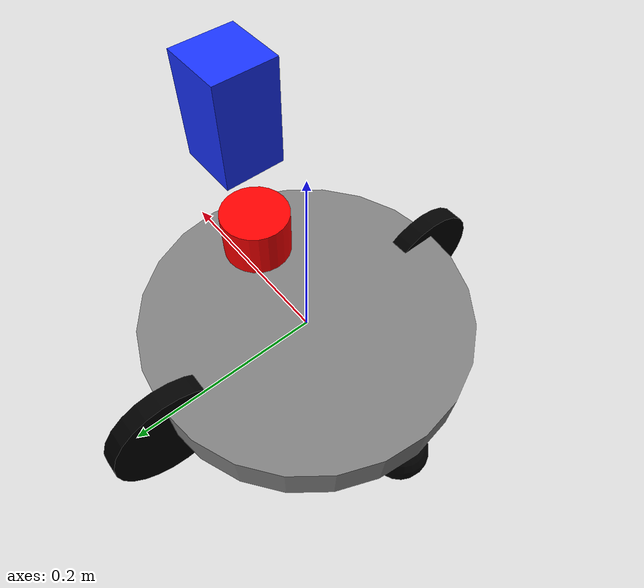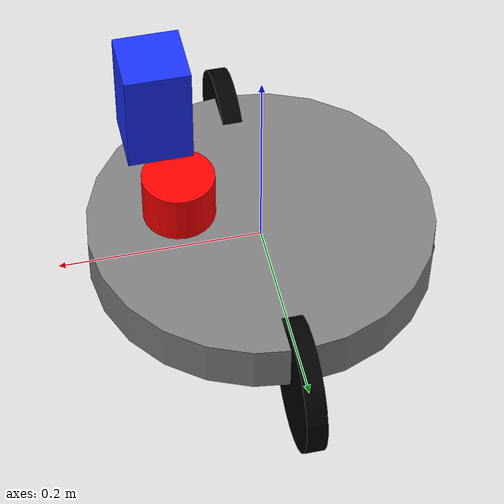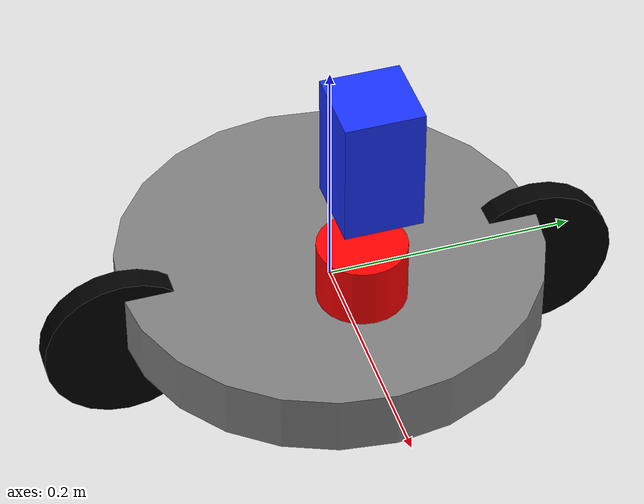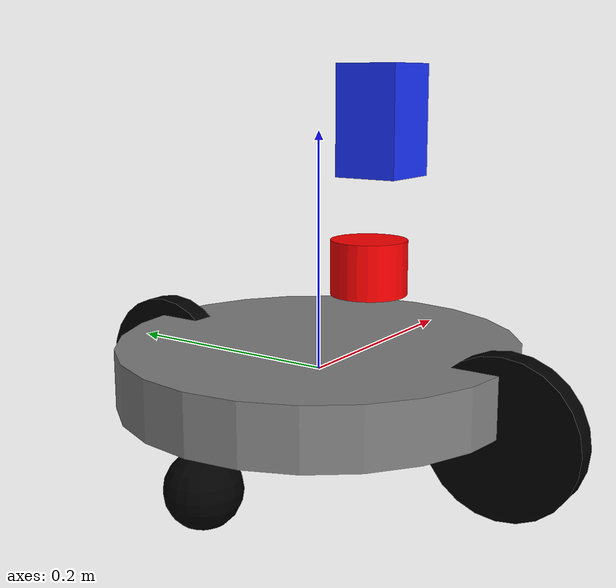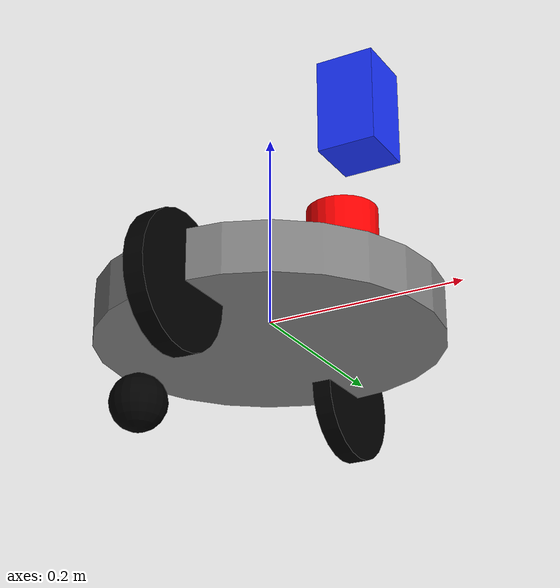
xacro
<?xml version="1.0"?>
<robot name="HERM" xmlns:xacro="http://www.ros.org/wiki/xacro">

  <!--  ROBOT PARAMETERS     -->
  <xacro:property name="base_radius" value="0.17"/>   <!-- 34cm diameter -->
  <xacro:property name="base_height" value="0.05"/>   <!-- 5cm tall -->
  <xacro:property name="wheel_radius" value="0.065"/> <!-- 6.5cm radius -->
  <xacro:property name="wheel_width"  value="0.02"/>  <!-- 2cm thick -->
  <xacro:property name="caster_radius" value="0.03"/> <!-- 3cm caster sphere -->

  <!--  GLOBAL MATERIALS     -->
  <material name="black">
    <color rgba="0.0 0.0 0.0 1.0"/>
  </material>

  <material name="gray">
    <color rgba="0.5 0.5 0.5 1.0"/>
  </material>

  <material name="blue">
    <color rgba="0.1 0.2 1.0 1.0"/>
  </material>

  <material name="red">
    <color rgba="1.0 0.0 0.0 1.0"/>
  </material>

  <!--      BASE LINK        -->
  <!-- Turtlebot-style round base -->
  <link name="base_link">
    <visual>
      <geometry>
        <cylinder radius="${base_radius}" length="${base_height}"/>
      </geometry>
      <origin xyz="0 0 0" rpy="0 0 0"/>
      <material name="gray"/>
    </visual>

    <collision>
      <geometry>
        <cylinder radius="${base_radius}" length="${base_height}"/>
      </geometry>
      <origin xyz="0 0 0" rpy="0 0 0"/>
    </collision>

    <inertial>
      <mass value="6.0"/>
      <origin xyz="0 0 0" rpy="0 0 0"/>
      <inertia
        ixx="0.15" ixy="0.0" ixz="0.0"
        iyy="0.15" iyz="0.0"
        izz="0.20"/>
    </inertial>
  </link>

  <!--    2WD DRIVE WHEELS   -->

  <!-- Wheel macro -->
  <xacro:macro name="drive_wheel" params="name y">
    <link name="${name}">
      <visual>
        <geometry>
          <cylinder radius="${wheel_radius}" length="${wheel_width}"/>
        </geometry>
        <!-- Rotate so cylinder axis is along robot x -->
        <origin xyz="0 0 0" rpy="0 1.5707 0"/>
        <material name="black"/>
      </visual>

      <collision>
        <geometry>
          <cylinder radius="${wheel_radius}" length="${wheel_width}"/>
        </geometry>
        <origin xyz="0 0 0" rpy="0 1.5707 0"/>
      </collision>

      <inertial>
        <mass value="0.3"/>
        <origin xyz="0 0 0" rpy="0 0 0"/>
        <inertia
          ixx="0.002" ixy="0.0" ixz="0.0"
          iyy="0.002" iyz="0.0"
          izz="0.002"/>
      </inertial>
    </link>

    <!-- Continuous joint for differential drive -->
    <joint name="${name}_joint" type="continuous">
      <parent link="base_link"/>
      <child link="${name}"/>
      <!-- Place wheel on side at base radius, slightly below base -->
      <origin xyz="0 ${y} -${base_height/2}" rpy="0 0 0"/>
      <axis xyz="0 1 0"/>
    </joint>
  </xacro:macro>

  <!-- Left and right wheels -->
  <xacro:drive_wheel name="left_wheel"  y="${ base_radius}"/>
  <xacro:drive_wheel name="right_wheel" y="-${base_radius}"/>

  <!--      CASTER WHEEL     -->

  <link name="caster_wheel">
    <visual>
      <geometry>
        <sphere radius="${caster_radius}"/>
      </geometry>
      <origin xyz="0 0 0" rpy="0 0 0"/>
      <material name="black"/>
    </visual>

    <collision>
      <geometry>
        <sphere radius="${caster_radius}"/>
      </geometry>
      <origin xyz="0 0 0" rpy="0 0 0"/>
    </collision>

    <inertial>
      <mass value="0.2"/>
      <origin xyz="0 0 0" rpy="0 0 0"/>
      <inertia
        ixx="0.001" ixy="0.0" ixz="0.0"
        iyy="0.001" iyz="0.0"
        izz="0.001"/>
    </inertial>
  </link>

  <!-- Fixed caster behind the base center -->
  <joint name="caster_wheel_joint" type="fixed">
    <parent link="base_link"/>
    <child link="caster_wheel"/>
    <!-- put the caster at the rear, slightly under base -->
    <origin xyz="-0.15 0 -${base_height/2 + caster_radius}" rpy="0 0 0"/>
  </joint>

  <!--        LiDAR          -->

  <link name="lidar_link">
    <visual>
      <geometry>
        <cylinder radius="0.035" length="0.05"/>
      </geometry>
      <origin xyz="0 0 0" rpy="0 0 0"/>
      <material name="red"/>
    </visual>

    <collision>
      <geometry>
        <cylinder radius="0.035" length="0.05"/>
      </geometry>
      <origin xyz="0 0 0" rpy="0 0 0"/>
    </collision>

    <inertial>
      <mass value="0.15"/>
      <origin xyz="0 0 0" rpy="0 0 0"/>
      <inertia
        ixx="0.005" ixy="0.0" ixz="0.0"
        iyy="0.005" iyz="0.0"
        izz="0.005"/>
    </inertial>
  </link>

  <!-- Mount LiDAR on top, slightly forward -->
  <joint name="lidar_mount" type="fixed">
    <parent link="base_link"/>
    <child link="lidar_link"/>
    <!-- on top of base, a bit forward on x -->
    <origin xyz="0.08 0 ${base_height/2 + 0.05}" rpy="0 0 0"/>
  </joint>

  <!--    Insta360 Camera    -->

  <link name="camera_link">
    <visual>
      <geometry>
        <box size="0.06 0.06 0.10"/>
      </geometry>
      <origin xyz="0 0 0" rpy="0 0 0"/>
      <material name="blue"/>
    </visual>

    <collision>
      <geometry>
        <box size="0.06 0.06 0.10"/>
      </geometry>
      <origin xyz="0 0 0" rpy="0 0 0"/>
    </collision>

    <inertial>
      <mass value="0.2"/>
      <origin xyz="0 0 0" rpy="0 0 0"/>
      <inertia
        ixx="0.01" ixy="0.0" ixz="0.0"
        iyy="0.01" iyz="0.0"
        izz="0.01"/>
    </inertial>
  </link>

  <!-- Mount camera above LiDAR, slightly more forward -->
  <joint name="camera_mount" type="fixed">
    <parent link="base_link"/>
    <child link="camera_link"/>
    <origin xyz="0.10 0 ${base_height/2 + 0.18}" rpy="0 0 0"/>
  </joint>

</robot>
